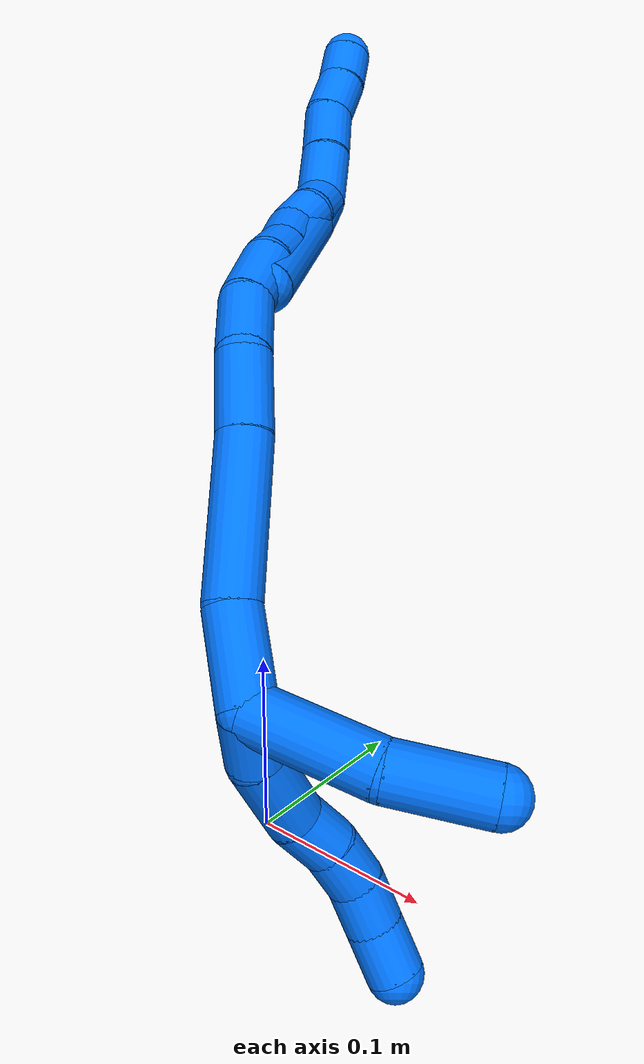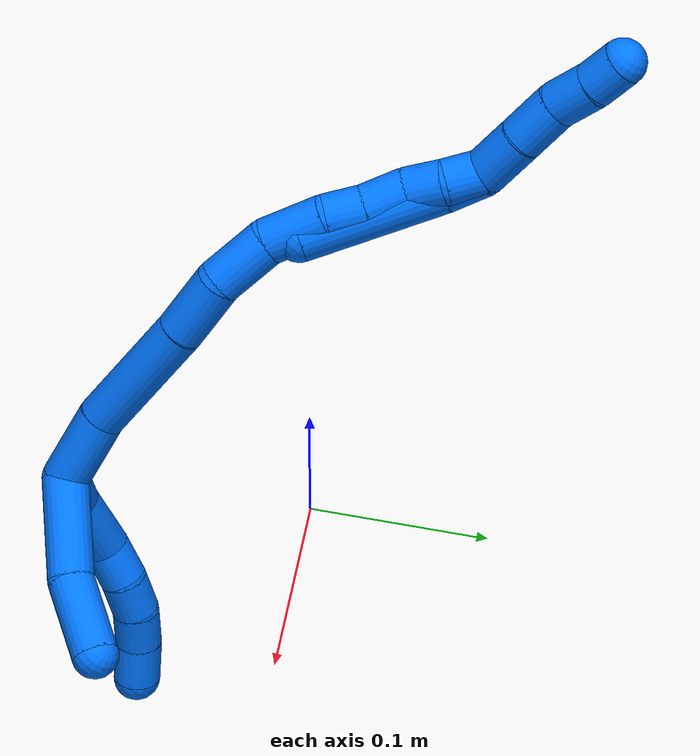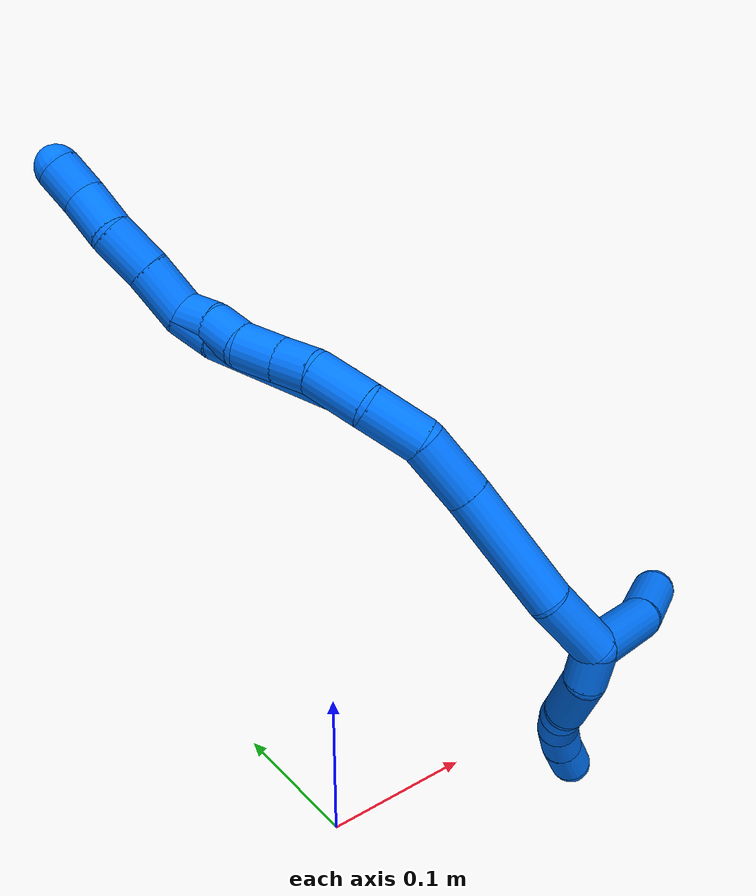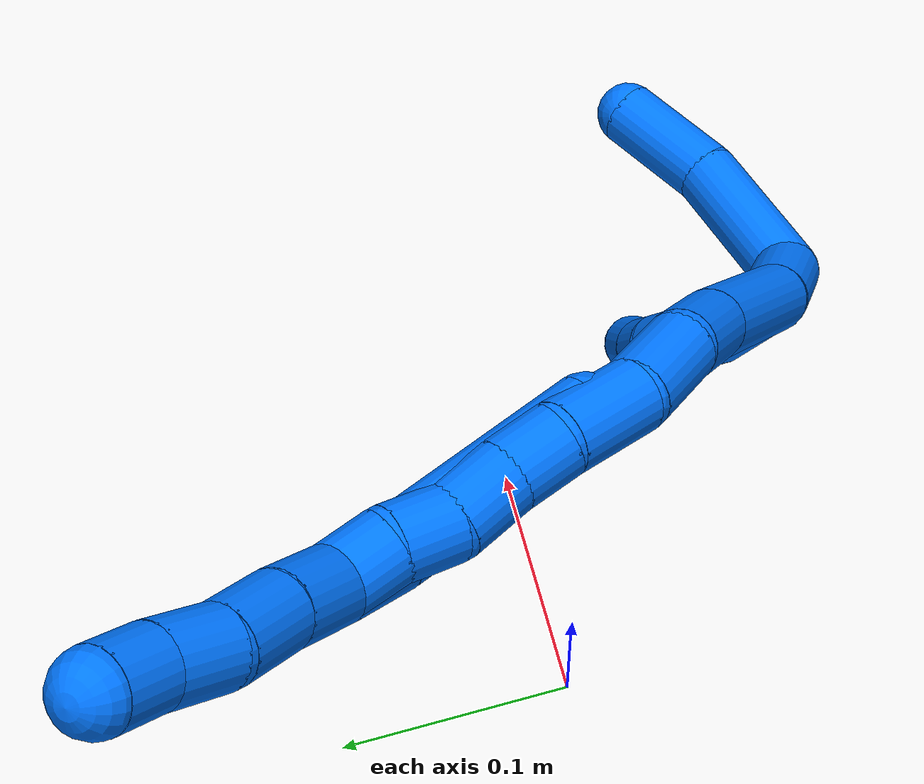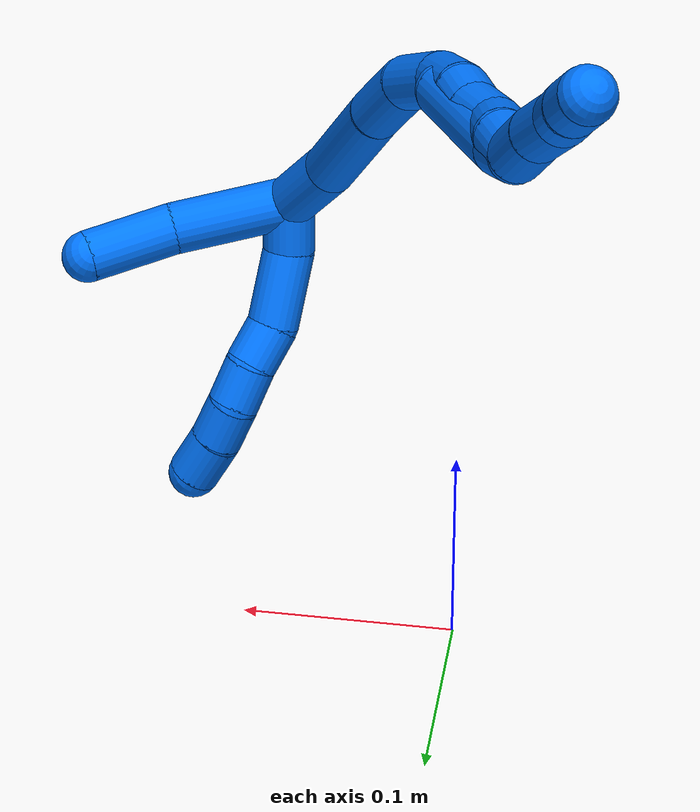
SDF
<sdf version="1.7">
 <world name="default">
  <model name="14">
   <static>0</static>
   <link name="14">
    <collision name="collision-cylinder-e_1_2_8">
     <pose>-0.004636 0.008045 -0.007771 -2.33888 -0.39296 0.877114</pose>
     <geometry><cylinder><radius>0.0125</radius><length>0.024216</length></cylinder></geometry>
     <surface>
      <friction><ode><mu>1.16</mu><mu2>1.16</mu2><slip1>0</slip1><slip2>0</slip2></ode></friction>
      <contact><ode><kp>1e+06</kp><kd>1</kd><max_vel>0</max_vel><min_depth>0.001</min_depth></ode></contact>
     </surface>
    </collision>
    <visual name="visual-cylinder-e_1_2_8">
     <pose>-0.004636 0.008045 -0.007771 -2.33888 -0.39296 0.877114</pose>
     <geometry><cylinder><radius>0.0125</radius><length>0.024216</length></cylinder></geometry>
     <material><ambient>0 0.462745 1 1</ambient></material>
    </visual>
    <collision name="collision-cylinder-e_2_8_9">
     <pose>-0.012248 0.032092 -0.02505 -2.1069 -0.158494 0.277319</pose>
     <geometry><cylinder><radius>0.0125</radius><length>0.0377</length></cylinder></geometry>
     <surface>
      <friction><ode><mu>1.16</mu><mu2>1.16</mu2><slip1>0</slip1><slip2>0</slip2></ode></friction>
      <contact><ode><kp>1e+06</kp><kd>1</kd><max_vel>0</max_vel><min_depth>0.001</min_depth></ode></contact>
     </surface>
    </collision>
    <visual name="visual-cylinder-e_2_8_9">
     <pose>-0.012248 0.032092 -0.02505 -2.1069 -0.158494 0.277319</pose>
     <geometry><cylinder><radius>0.0125</radius><length>0.0377</length></cylinder></geometry>
     <material><ambient>0 0.462745 1 1</ambient></material>
    </visual>
    <collision name="collision-cylinder-e_3_9_10">
     <pose>-0.013504 0.057516 -0.039604 -2.06258 0.159444 -0.265292</pose>
     <geometry><cylinder><radius>0.0125</radius><length>0.021651</length></cylinder></geometry>
     <surface>
      <friction><ode><mu>1.16</mu><mu2>1.16</mu2><slip1>0</slip1><slip2>0</slip2></ode></friction>
      <contact><ode><kp>1e+06</kp><kd>1</kd><max_vel>0</max_vel><min_depth>0.001</min_depth></ode></contact>
     </surface>
    </collision>
    <visual name="visual-cylinder-e_3_9_10">
     <pose>-0.013504 0.057516 -0.039604 -2.06258 0.159444 -0.265292</pose>
     <geometry><cylinder><radius>0.0125</radius><length>0.021651</length></cylinder></geometry>
     <material><ambient>0 0.462745 1 1</ambient></material>
    </visual>
    <collision name="collision-cylinder-e_4_10_11">
     <pose>-0.011498 0.075488 -0.051175 -2.22248 0.026738 -0.054018</pose>
     <geometry><cylinder><radius>0.0125</radius><length>0.021518</length></cylinder></geometry>
     <surface>
      <friction><ode><mu>1.16</mu><mu2>1.16</mu2><slip1>0</slip1><slip2>0</slip2></ode></friction>
      <contact><ode><kp>1e+06</kp><kd>1</kd><max_vel>0</max_vel><min_depth>0.001</min_depth></ode></contact>
     </surface>
    </collision>
    <visual name="visual-cylinder-e_4_10_11">
     <pose>-0.011498 0.075488 -0.051175 -2.22248 0.026738 -0.054018</pose>
     <geometry><cylinder><radius>0.0125</radius><length>0.021518</length></cylinder></geometry>
     <material><ambient>0 0.462745 1 1</ambient></material>
    </visual>
    <collision name="collision-cylinder-e_5_11_12">
     <pose>-0.011204 0.090755 -0.066095 -2.46697 0.000613 -0.001748</pose>
     <geometry><cylinder><radius>0.0125</radius><length>0.021504</length></cylinder></geometry>
     <surface>
      <friction><ode><mu>1.16</mu><mu2>1.16</mu2><slip1>0</slip1><slip2>0</slip2></ode></friction>
      <contact><ode><kp>1e+06</kp><kd>1</kd><max_vel>0</max_vel><min_depth>0.001</min_depth></ode></contact>
     </surface>
    </collision>
    <visual name="visual-cylinder-e_5_11_12">
     <pose>-0.011204 0.090755 -0.066095 -2.46697 0.000613 -0.001748</pose>
     <geometry><cylinder><radius>0.0125</radius><length>0.021504</length></cylinder></geometry>
     <material><ambient>0 0.462745 1 1</ambient></material>
    </visual>
    <collision name="collision-cylinder-e_6_12_6">
     <pose>-0.010123 0.103799 -0.08428 -2.56766 0.091896 -0.309128</pose>
     <geometry><cylinder><radius>0.0125</radius><length>0.023411</length></cylinder></geometry>
     <surface>
      <friction><ode><mu>1.16</mu><mu2>1.16</mu2><slip1>0</slip1><slip2>0</slip2></ode></friction>
      <contact><ode><kp>1e+06</kp><kd>1</kd><max_vel>0</max_vel><min_depth>0.001</min_depth></ode></contact>
     </surface>
    </collision>
    <visual name="visual-cylinder-e_6_12_6">
     <pose>-0.010123 0.103799 -0.08428 -2.56766 0.091896 -0.309128</pose>
     <geometry><cylinder><radius>0.0125</radius><length>0.023411</length></cylinder></geometry>
     <material><ambient>0 0.462745 1 1</ambient></material>
    </visual>
    <collision name="collision-cylinder-e_1_2_13">
     <pose>0.023302 0.011537 -0.011275 -2.34473 0.965277 -1.788</pose>
     <geometry><cylinder><radius>0.0125</radius><length>0.056682</length></cylinder></geometry>
     <surface>
      <friction><ode><mu>1.16</mu><mu2>1.16</mu2><slip1>0</slip1><slip2>0</slip2></ode></friction>
      <contact><ode><kp>1e+06</kp><kd>1</kd><max_vel>0</max_vel><min_depth>0.001</min_depth></ode></contact>
     </surface>
    </collision>
    <visual name="visual-cylinder-e_1_2_13">
     <pose>0.023302 0.011537 -0.011275 -2.34473 0.965277 -1.788</pose>
     <geometry><cylinder><radius>0.0125</radius><length>0.056682</length></cylinder></geometry>
     <material><ambient>0 0.462745 1 1</ambient></material>
    </visual>
    <collision name="collision-cylinder-e_2_13_5">
     <pose>0.06393 0.035255 -0.027083 -1.92699 0.927146 -1.24723</pose>
     <geometry><cylinder><radius>0.0125</radius><length>0.043318</length></cylinder></geometry>
     <surface>
      <friction><ode><mu>1.16</mu><mu2>1.16</mu2><slip1>0</slip1><slip2>0</slip2></ode></friction>
      <contact><ode><kp>1e+06</kp><kd>1</kd><max_vel>0</max_vel><min_depth>0.001</min_depth></ode></contact>
     </surface>
    </collision>
    <visual name="visual-cylinder-e_2_13_5">
     <pose>0.06393 0.035255 -0.027083 -1.92699 0.927146 -1.24723</pose>
     <geometry><cylinder><radius>0.0125</radius><length>0.043318</length></cylinder></geometry>
     <material><ambient>0 0.462745 1 1</ambient></material>
    </visual>
    <collision name="collision-cylinder-e_1_2_14">
     <pose>-0.002837 -0.00264 0.020388 0.128771 -0.137147 -0.008856</pose>
     <geometry><cylinder><radius>0.0125</radius><length>0.041506</length></cylinder></geometry>
     <surface>
      <friction><ode><mu>1.16</mu><mu2>1.16</mu2><slip1>0</slip1><slip2>0</slip2></ode></friction>
      <contact><ode><kp>1e+06</kp><kd>1</kd><max_vel>0</max_vel><min_depth>0.001</min_depth></ode></contact>
     </surface>
    </collision>
    <visual name="visual-cylinder-e_1_2_14">
     <pose>-0.002837 -0.00264 0.020388 0.128771 -0.137147 -0.008856</pose>
     <geometry><cylinder><radius>0.0125</radius><length>0.041506</length></cylinder></geometry>
     <material><ambient>0 0.462745 1 1</ambient></material>
    </visual>
    <collision name="collision-cylinder-e_2_14_15">
     <pose>-0.004283 -0.005281 0.076652 1.9e-05 0.038757 0</pose>
     <geometry><cylinder><radius>0.0125</radius><length>0.071805</length></cylinder></geometry>
     <surface>
      <friction><ode><mu>1.16</mu><mu2>1.16</mu2><slip1>0</slip1><slip2>0</slip2></ode></friction>
      <contact><ode><kp>1e+06</kp><kd>1</kd><max_vel>0</max_vel><min_depth>0.001</min_depth></ode></contact>
     </surface>
    </collision>
    <visual name="visual-cylinder-e_2_14_15">
     <pose>-0.004283 -0.005281 0.076652 1.9e-05 0.038757 0</pose>
     <geometry><cylinder><radius>0.0125</radius><length>0.071805</length></cylinder></geometry>
     <material><ambient>0 0.462745 1 1</ambient></material>
    </visual>
    <collision name="collision-cylinder-e_3_15_16">
     <pose>-0.003439 -0.006094 0.130773 0.044489 -0.02994 -0.000666</pose>
     <geometry><cylinder><radius>0.0125</radius><length>0.036543</length></cylinder></geometry>
     <surface>
      <friction><ode><mu>1.16</mu><mu2>1.16</mu2><slip1>0</slip1><slip2>0</slip2></ode></friction>
      <contact><ode><kp>1e+06</kp><kd>1</kd><max_vel>0</max_vel><min_depth>0.001</min_depth></ode></contact>
     </surface>
    </collision>
    <visual name="visual-cylinder-e_3_15_16">
     <pose>-0.003439 -0.006094 0.130773 0.044489 -0.02994 -0.000666</pose>
     <geometry><cylinder><radius>0.0125</radius><length>0.036543</length></cylinder></geometry>
     <material><ambient>0 0.462745 1 1</ambient></material>
    </visual>
    <collision name="collision-cylinder-e_4_16_17">
     <pose>-0.007504 -0.002989 0.1646 -0.246242 -0.215518 0.026772</pose>
     <geometry><cylinder><radius>0.0125</radius><length>0.032895</length></cylinder></geometry>
     <surface>
      <friction><ode><mu>1.16</mu><mu2>1.16</mu2><slip1>0</slip1><slip2>0</slip2></ode></friction>
      <contact><ode><kp>1e+06</kp><kd>1</kd><max_vel>0</max_vel><min_depth>0.001</min_depth></ode></contact>
     </surface>
    </collision>
    <visual name="visual-cylinder-e_4_16_17">
     <pose>-0.007504 -0.002989 0.1646 -0.246242 -0.215518 0.026772</pose>
     <geometry><cylinder><radius>0.0125</radius><length>0.032895</length></cylinder></geometry>
     <material><ambient>0 0.462745 1 1</ambient></material>
    </visual>
    <collision name="collision-cylinder-e_5_17_18">
     <pose>-0.01223 0.008917 0.194394 -0.512187 -0.074038 0.019395</pose>
     <geometry><cylinder><radius>0.0125</radius><length>0.032696</length></cylinder></geometry>
     <surface>
      <friction><ode><mu>1.16</mu><mu2>1.16</mu2><slip1>0</slip1><slip2>0</slip2></ode></friction>
      <contact><ode><kp>1e+06</kp><kd>1</kd><max_vel>0</max_vel><min_depth>0.001</min_depth></ode></contact>
     </surface>
    </collision>
    <visual name="visual-cylinder-e_5_17_18">
     <pose>-0.01223 0.008917 0.194394 -0.512187 -0.074038 0.019395</pose>
     <geometry><cylinder><radius>0.0125</radius><length>0.032696</length></cylinder></geometry>
     <material><ambient>0 0.462745 1 1</ambient></material>
    </visual>
    <collision name="collision-cylinder-e_6_18_19">
     <pose>-0.015195 0.023834 0.216051 -0.749301 -0.170897 0.067339</pose>
     <geometry><cylinder><radius>0.0125</radius><length>0.020642</length></cylinder></geometry>
     <surface>
      <friction><ode><mu>1.16</mu><mu2>1.16</mu2><slip1>0</slip1><slip2>0</slip2></ode></friction>
      <contact><ode><kp>1e+06</kp><kd>1</kd><max_vel>0</max_vel><min_depth>0.001</min_depth></ode></contact>
     </surface>
    </collision>
    <visual name="visual-cylinder-e_6_18_19">
     <pose>-0.015195 0.023834 0.216051 -0.749301 -0.170897 0.067339</pose>
     <geometry><cylinder><radius>0.0125</radius><length>0.020642</length></cylinder></geometry>
     <material><ambient>0 0.462745 1 1</ambient></material>
    </visual>
    <collision name="collision-cylinder-e_7_19_20">
     <pose>-0.01971 0.037291 0.232876 -0.608174 -0.23697 0.074681</pose>
     <geometry><cylinder><radius>0.0125</radius><length>0.023511</length></cylinder></geometry>
     <surface>
      <friction><ode><mu>1.16</mu><mu2>1.16</mu2><slip1>0</slip1><slip2>0</slip2></ode></friction>
      <contact><ode><kp>1e+06</kp><kd>1</kd><max_vel>0</max_vel><min_depth>0.001</min_depth></ode></contact>
     </surface>
    </collision>
    <visual name="visual-cylinder-e_7_19_20">
     <pose>-0.01971 0.037291 0.232876 -0.608174 -0.23697 0.074681</pose>
     <geometry><cylinder><radius>0.0125</radius><length>0.023511</length></cylinder></geometry>
     <material><ambient>0 0.462745 1 1</ambient></material>
    </visual>
    <collision name="collision-cylinder-e_8_20_21">
     <pose>-0.021844 0.049838 0.250461 -0.632662 0.06139 -0.0201</pose>
     <geometry><cylinder><radius>0.0125</radius><length>0.020392</length></cylinder></geometry>
     <surface>
      <friction><ode><mu>1.16</mu><mu2>1.16</mu2><slip1>0</slip1><slip2>0</slip2></ode></friction>
      <contact><ode><kp>1e+06</kp><kd>1</kd><max_vel>0</max_vel><min_depth>0.001</min_depth></ode></contact>
     </surface>
    </collision>
    <visual name="visual-cylinder-e_8_20_21">
     <pose>-0.021844 0.049838 0.250461 -0.632662 0.06139 -0.0201</pose>
     <geometry><cylinder><radius>0.0125</radius><length>0.020392</length></cylinder></geometry>
     <material><ambient>0 0.462745 1 1</ambient></material>
    </visual>
    <collision name="collision-cylinder-e_9_21_1">
     <pose>-0.02294 0.062362 0.26607 -0.721189 -0.172993 0.065372</pose>
     <geometry><cylinder><radius>0.0125</radius><length>0.020009</length></cylinder></geometry>
     <surface>
      <friction><ode><mu>1.16</mu><mu2>1.16</mu2><slip1>0</slip1><slip2>0</slip2></ode></friction>
      <contact><ode><kp>1e+06</kp><kd>1</kd><max_vel>0</max_vel><min_depth>0.001</min_depth></ode></contact>
     </surface>
    </collision>
    <visual name="visual-cylinder-e_9_21_1">
     <pose>-0.02294 0.062362 0.26607 -0.721189 -0.172993 0.065372</pose>
     <geometry><cylinder><radius>0.0125</radius><length>0.020009</length></cylinder></geometry>
     <material><ambient>0 0.462745 1 1</ambient></material>
    </visual>
    <collision name="collision-cylinder-e_1_1_22">
     <pose>-0.024099 0.063632 0.263553 2.65573 0.050208 0.201945</pose>
     <geometry><cylinder><radius>0.0125</radius><length>0.022461</length></cylinder></geometry>
     <surface>
      <friction><ode><mu>1.16</mu><mu2>1.16</mu2><slip1>0</slip1><slip2>0</slip2></ode></friction>
      <contact><ode><kp>1e+06</kp><kd>1</kd><max_vel>0</max_vel><min_depth>0.001</min_depth></ode></contact>
     </surface>
    </collision>
    <visual name="visual-cylinder-e_1_1_22">
     <pose>-0.024099 0.063632 0.263553 2.65573 0.050208 0.201945</pose>
     <geometry><cylinder><radius>0.0125</radius><length>0.022461</length></cylinder></geometry>
     <material><ambient>0 0.462745 1 1</ambient></material>
    </visual>
    <collision name="collision-cylinder-e_2_22_4">
     <pose>-0.016611 0.035409 0.223192 2.49488 0.179559 0.524863</pose>
     <geometry><cylinder><radius>0.0125</radius><length>0.077539</length></cylinder></geometry>
     <surface>
      <friction><ode><mu>1.16</mu><mu2>1.16</mu2><slip1>0</slip1><slip2>0</slip2></ode></friction>
      <contact><ode><kp>1e+06</kp><kd>1</kd><max_vel>0</max_vel><min_depth>0.001</min_depth></ode></contact>
     </surface>
    </collision>
    <visual name="visual-cylinder-e_2_22_4">
     <pose>-0.016611 0.035409 0.223192 2.49488 0.179559 0.524863</pose>
     <geometry><cylinder><radius>0.0125</radius><length>0.077539</length></cylinder></geometry>
     <material><ambient>0 0.462745 1 1</ambient></material>
    </visual>
    <collision name="collision-cylinder-e_1_1_23">
     <pose>-0.023891 0.069828 0.287981 -0.065974 0.053029 -0.00175</pose>
     <geometry><cylinder><radius>0.0125</radius><length>0.029123</length></cylinder></geometry>
     <surface>
      <friction><ode><mu>1.16</mu><mu2>1.16</mu2><slip1>0</slip1><slip2>0</slip2></ode></friction>
      <contact><ode><kp>1e+06</kp><kd>1</kd><max_vel>0</max_vel><min_depth>0.001</min_depth></ode></contact>
     </surface>
    </collision>
    <visual name="visual-cylinder-e_1_1_23">
     <pose>-0.023891 0.069828 0.287981 -0.065974 0.053029 -0.00175</pose>
     <geometry><cylinder><radius>0.0125</radius><length>0.029123</length></cylinder></geometry>
     <material><ambient>0 0.462745 1 1</ambient></material>
    </visual>
    <collision name="collision-cylinder-e_2_23_24">
     <pose>-0.02348 0.07209 0.315897 -0.096897 -0.026804 0.0013</pose>
     <geometry><cylinder><radius>0.0125</radius><length>0.026949</length></cylinder></geometry>
     <surface>
      <friction><ode><mu>1.16</mu><mu2>1.16</mu2><slip1>0</slip1><slip2>0</slip2></ode></friction>
      <contact><ode><kp>1e+06</kp><kd>1</kd><max_vel>0</max_vel><min_depth>0.001</min_depth></ode></contact>
     </surface>
    </collision>
    <visual name="visual-cylinder-e_2_23_24">
     <pose>-0.02348 0.07209 0.315897 -0.096897 -0.026804 0.0013</pose>
     <geometry><cylinder><radius>0.0125</radius><length>0.026949</length></cylinder></geometry>
     <material><ambient>0 0.462745 1 1</ambient></material>
    </visual>
    <collision name="collision-cylinder-e_3_24_25">
     <pose>-0.02198 0.076278 0.340557 -0.250961 0.158809 -0.020074</pose>
     <geometry><cylinder><radius>0.0125</radius><length>0.023532</length></cylinder></geometry>
     <surface>
      <friction><ode><mu>1.16</mu><mu2>1.16</mu2><slip1>0</slip1><slip2>0</slip2></ode></friction>
      <contact><ode><kp>1e+06</kp><kd>1</kd><max_vel>0</max_vel><min_depth>0.001</min_depth></ode></contact>
     </surface>
    </collision>
    <visual name="visual-cylinder-e_3_24_25">
     <pose>-0.02198 0.076278 0.340557 -0.250961 0.158809 -0.020074</pose>
     <geometry><cylinder><radius>0.0125</radius><length>0.023532</length></cylinder></geometry>
     <material><ambient>0 0.462745 1 1</ambient></material>
    </visual>
    <collision name="collision-cylinder-e_4_25_3">
     <pose>-0.019479 0.080706 0.361872 -0.152173 0.062894 -0.004796</pose>
     <geometry><cylinder><radius>0.0125</radius><length>0.020396</length></cylinder></geometry>
     <surface>
      <friction><ode><mu>1.16</mu><mu2>1.16</mu2><slip1>0</slip1><slip2>0</slip2></ode></friction>
      <contact><ode><kp>1e+06</kp><kd>1</kd><max_vel>0</max_vel><min_depth>0.001</min_depth></ode></contact>
     </surface>
    </collision>
    <visual name="visual-cylinder-e_4_25_3">
     <pose>-0.019479 0.080706 0.361872 -0.152173 0.062894 -0.004796</pose>
     <geometry><cylinder><radius>0.0125</radius><length>0.020396</length></cylinder></geometry>
     <material><ambient>0 0.462745 1 1</ambient></material>
    </visual>
    <collision name="collision-sphere-3">
     <pose>-0.018838 0.082249 0.371932 0 -0 0</pose>
     <geometry><sphere><radius>0.0125</radius></sphere></geometry>
     <surface>
      <friction><ode><mu>1.16</mu><mu2>1.16</mu2><slip1>0</slip1><slip2>0</slip2></ode></friction>
      <contact><ode><kp>1e+06</kp><kd>1</kd><max_vel>0</max_vel><min_depth>0.001</min_depth></ode></contact>
     </surface>
    </collision>
    <visual name="visual-sphere-3">
     <pose>-0.018838 0.082249 0.371932 0 -0 0</pose>
     <geometry><sphere><radius>0.0125</radius></sphere></geometry>
     <material><ambient>0 0.462745 1 1</ambient></material>
    </visual>
    <collision name="collision-sphere-25">
     <pose>-0.02012 0.079163 0.351811 0 -0 0</pose>
     <geometry><sphere><radius>0.0125</radius></sphere></geometry>
     <surface>
      <friction><ode><mu>1.16</mu><mu2>1.16</mu2><slip1>0</slip1><slip2>0</slip2></ode></friction>
      <contact><ode><kp>1e+06</kp><kd>1</kd><max_vel>0</max_vel><min_depth>0.001</min_depth></ode></contact>
     </surface>
    </collision>
    <visual name="visual-sphere-25">
     <pose>-0.02012 0.079163 0.351811 0 -0 0</pose>
     <geometry><sphere><radius>0.0125</radius></sphere></geometry>
     <material><ambient>0 0.462745 1 1</ambient></material>
    </visual>
    <collision name="collision-sphere-24">
     <pose>-0.023841 0.073393 0.329304 0 -0 0</pose>
     <geometry><sphere><radius>0.0125</radius></sphere></geometry>
     <surface>
      <friction><ode><mu>1.16</mu><mu2>1.16</mu2><slip1>0</slip1><slip2>0</slip2></ode></friction>
      <contact><ode><kp>1e+06</kp><kd>1</kd><max_vel>0</max_vel><min_depth>0.001</min_depth></ode></contact>
     </surface>
    </collision>
    <visual name="visual-sphere-24">
     <pose>-0.023841 0.073393 0.329304 0 -0 0</pose>
     <geometry><sphere><radius>0.0125</radius></sphere></geometry>
     <material><ambient>0 0.462745 1 1</ambient></material>
    </visual>
    <collision name="collision-sphere-23">
     <pose>-0.023119 0.070787 0.302491 0 -0 0</pose>
     <geometry><sphere><radius>0.0125</radius></sphere></geometry>
     <surface>
      <friction><ode><mu>1.16</mu><mu2>1.16</mu2><slip1>0</slip1><slip2>0</slip2></ode></friction>
      <contact><ode><kp>1e+06</kp><kd>1</kd><max_vel>0</max_vel><min_depth>0.001</min_depth></ode></contact>
     </surface>
    </collision>
    <visual name="visual-sphere-23">
     <pose>-0.023119 0.070787 0.302491 0 -0 0</pose>
     <geometry><sphere><radius>0.0125</radius></sphere></geometry>
     <material><ambient>0 0.462745 1 1</ambient></material>
    </visual>
    <collision name="collision-sphere-4">
     <pose>-0.009687 0.012423 0.192748 0 -0 0</pose>
     <geometry><sphere><radius>0.0125</radius></sphere></geometry>
     <surface>
      <friction><ode><mu>1.16</mu><mu2>1.16</mu2><slip1>0</slip1><slip2>0</slip2></ode></friction>
      <contact><ode><kp>1e+06</kp><kd>1</kd><max_vel>0</max_vel><min_depth>0.001</min_depth></ode></contact>
     </surface>
    </collision>
    <visual name="visual-sphere-4">
     <pose>-0.009687 0.012423 0.192748 0 -0 0</pose>
     <geometry><sphere><radius>0.0125</radius></sphere></geometry>
     <material><ambient>0 0.462745 1 1</ambient></material>
    </visual>
    <collision name="collision-sphere-22">
     <pose>-0.023535 0.058394 0.253635 0 -0 0</pose>
     <geometry><sphere><radius>0.0125</radius></sphere></geometry>
     <surface>
      <friction><ode><mu>1.16</mu><mu2>1.16</mu2><slip1>0</slip1><slip2>0</slip2></ode></friction>
      <contact><ode><kp>1e+06</kp><kd>1</kd><max_vel>0</max_vel><min_depth>0.001</min_depth></ode></contact>
     </surface>
    </collision>
    <visual name="visual-sphere-22">
     <pose>-0.023535 0.058394 0.253635 0 -0 0</pose>
     <geometry><sphere><radius>0.0125</radius></sphere></geometry>
     <material><ambient>0 0.462745 1 1</ambient></material>
    </visual>
    <collision name="collision-sphere-1">
     <pose>-0.024663 0.06887 0.273472 0 -0 0</pose>
     <geometry><sphere><radius>0.0125</radius></sphere></geometry>
     <surface>
      <friction><ode><mu>1.16</mu><mu2>1.16</mu2><slip1>0</slip1><slip2>0</slip2></ode></friction>
      <contact><ode><kp>1e+06</kp><kd>1</kd><max_vel>0</max_vel><min_depth>0.001</min_depth></ode></contact>
     </surface>
    </collision>
    <visual name="visual-sphere-1">
     <pose>-0.024663 0.06887 0.273472 0 -0 0</pose>
     <geometry><sphere><radius>0.0125</radius></sphere></geometry>
     <material><ambient>0 0.462745 1 1</ambient></material>
    </visual>
    <collision name="collision-sphere-21">
     <pose>-0.021218 0.055855 0.258669 0 -0 0</pose>
     <geometry><sphere><radius>0.0125</radius></sphere></geometry>
     <surface>
      <friction><ode><mu>1.16</mu><mu2>1.16</mu2><slip1>0</slip1><slip2>0</slip2></ode></friction>
      <contact><ode><kp>1e+06</kp><kd>1</kd><max_vel>0</max_vel><min_depth>0.001</min_depth></ode></contact>
     </surface>
    </collision>
    <visual name="visual-sphere-21">
     <pose>-0.021218 0.055855 0.258669 0 -0 0</pose>
     <geometry><sphere><radius>0.0125</radius></sphere></geometry>
     <material><ambient>0 0.462745 1 1</ambient></material>
    </visual>
    <collision name="collision-sphere-12">
     <pose>-0.011197 0.097471 -0.074491 0 -0 0</pose>
     <geometry><sphere><radius>0.0125</radius></sphere></geometry>
     <surface>
      <friction><ode><mu>1.16</mu><mu2>1.16</mu2><slip1>0</slip1><slip2>0</slip2></ode></friction>
      <contact><ode><kp>1e+06</kp><kd>1</kd><max_vel>0</max_vel><min_depth>0.001</min_depth></ode></contact>
     </surface>
    </collision>
    <visual name="visual-sphere-12">
     <pose>-0.011197 0.097471 -0.074491 0 -0 0</pose>
     <geometry><sphere><radius>0.0125</radius></sphere></geometry>
     <material><ambient>0 0.462745 1 1</ambient></material>
    </visual>
    <collision name="collision-sphere-11">
     <pose>-0.01121 0.08404 -0.057698 0 -0 0</pose>
     <geometry><sphere><radius>0.0125</radius></sphere></geometry>
     <surface>
      <friction><ode><mu>1.16</mu><mu2>1.16</mu2><slip1>0</slip1><slip2>0</slip2></ode></friction>
      <contact><ode><kp>1e+06</kp><kd>1</kd><max_vel>0</max_vel><min_depth>0.001</min_depth></ode></contact>
     </surface>
    </collision>
    <visual name="visual-sphere-11">
     <pose>-0.01121 0.08404 -0.057698 0 -0 0</pose>
     <geometry><sphere><radius>0.0125</radius></sphere></geometry>
     <material><ambient>0 0.462745 1 1</ambient></material>
    </visual>
    <collision name="collision-sphere-10">
     <pose>-0.011786 0.066937 -0.044651 0 -0 0</pose>
     <geometry><sphere><radius>0.0125</radius></sphere></geometry>
     <surface>
      <friction><ode><mu>1.16</mu><mu2>1.16</mu2><slip1>0</slip1><slip2>0</slip2></ode></friction>
      <contact><ode><kp>1e+06</kp><kd>1</kd><max_vel>0</max_vel><min_depth>0.001</min_depth></ode></contact>
     </surface>
    </collision>
    <visual name="visual-sphere-10">
     <pose>-0.011786 0.066937 -0.044651 0 -0 0</pose>
     <geometry><sphere><radius>0.0125</radius></sphere></geometry>
     <material><ambient>0 0.462745 1 1</ambient></material>
    </visual>
    <collision name="collision-sphere-9">
     <pose>-0.015223 0.048094 -0.034557 0 -0 0</pose>
     <geometry><sphere><radius>0.0125</radius></sphere></geometry>
     <surface>
      <friction><ode><mu>1.16</mu><mu2>1.16</mu2><slip1>0</slip1><slip2>0</slip2></ode></friction>
      <contact><ode><kp>1e+06</kp><kd>1</kd><max_vel>0</max_vel><min_depth>0.001</min_depth></ode></contact>
     </surface>
    </collision>
    <visual name="visual-sphere-9">
     <pose>-0.015223 0.048094 -0.034557 0 -0 0</pose>
     <geometry><sphere><radius>0.0125</radius></sphere></geometry>
     <material><ambient>0 0.462745 1 1</ambient></material>
    </visual>
    <collision name="collision-sphere-2">
     <geometry><sphere><radius>0.0125</radius></sphere></geometry>
     <surface>
      <friction><ode><mu>1.16</mu><mu2>1.16</mu2><slip1>0</slip1><slip2>0</slip2></ode></friction>
      <contact><ode><kp>1e+06</kp><kd>1</kd><max_vel>0</max_vel><min_depth>0.001</min_depth></ode></contact>
     </surface>
    </collision>
    <visual name="visual-sphere-2">
     <geometry><sphere><radius>0.0125</radius></sphere></geometry>
     <material><ambient>0 0.462745 1 1</ambient></material>
    </visual>
    <collision name="collision-sphere-19">
     <pose>-0.01695 0.030762 0.223498 0 -0 0</pose>
     <geometry><sphere><radius>0.0125</radius></sphere></geometry>
     <surface>
      <friction><ode><mu>1.16</mu><mu2>1.16</mu2><slip1>0</slip1><slip2>0</slip2></ode></friction>
      <contact><ode><kp>1e+06</kp><kd>1</kd><max_vel>0</max_vel><min_depth>0.001</min_depth></ode></contact>
     </surface>
    </collision>
    <visual name="visual-sphere-19">
     <pose>-0.01695 0.030762 0.223498 0 -0 0</pose>
     <geometry><sphere><radius>0.0125</radius></sphere></geometry>
     <material><ambient>0 0.462745 1 1</ambient></material>
    </visual>
    <collision name="collision-sphere-8">
     <pose>-0.009273 0.01609 -0.015542 0 -0 0</pose>
     <geometry><sphere><radius>0.0125</radius></sphere></geometry>
     <surface>
      <friction><ode><mu>1.16</mu><mu2>1.16</mu2><slip1>0</slip1><slip2>0</slip2></ode></friction>
      <contact><ode><kp>1e+06</kp><kd>1</kd><max_vel>0</max_vel><min_depth>0.001</min_depth></ode></contact>
     </surface>
    </collision>
    <visual name="visual-sphere-8">
     <pose>-0.009273 0.01609 -0.015542 0 -0 0</pose>
     <geometry><sphere><radius>0.0125</radius></sphere></geometry>
     <material><ambient>0 0.462745 1 1</ambient></material>
    </visual>
    <collision name="collision-sphere-6">
     <pose>-0.009049 0.110128 -0.094068 0 -0 0</pose>
     <geometry><sphere><radius>0.0125</radius></sphere></geometry>
     <surface>
      <friction><ode><mu>1.16</mu><mu2>1.16</mu2><slip1>0</slip1><slip2>0</slip2></ode></friction>
      <contact><ode><kp>1e+06</kp><kd>1</kd><max_vel>0</max_vel><min_depth>0.001</min_depth></ode></contact>
     </surface>
    </collision>
    <visual name="visual-sphere-6">
     <pose>-0.009049 0.110128 -0.094068 0 -0 0</pose>
     <geometry><sphere><radius>0.0125</radius></sphere></geometry>
     <material><ambient>0 0.462745 1 1</ambient></material>
    </visual>
    <collision name="collision-sphere-13">
     <pose>0.046604 0.023073 -0.02255 0 -0 0</pose>
     <geometry><sphere><radius>0.0125</radius></sphere></geometry>
     <surface>
      <friction><ode><mu>1.16</mu><mu2>1.16</mu2><slip1>0</slip1><slip2>0</slip2></ode></friction>
      <contact><ode><kp>1e+06</kp><kd>1</kd><max_vel>0</max_vel><min_depth>0.001</min_depth></ode></contact>
     </surface>
    </collision>
    <visual name="visual-sphere-13">
     <pose>0.046604 0.023073 -0.02255 0 -0 0</pose>
     <geometry><sphere><radius>0.0125</radius></sphere></geometry>
     <material><ambient>0 0.462745 1 1</ambient></material>
    </visual>
    <collision name="collision-sphere-5">
     <pose>0.081255 0.047437 -0.031615 0 -0 0</pose>
     <geometry><sphere><radius>0.0125</radius></sphere></geometry>
     <surface>
      <friction><ode><mu>1.16</mu><mu2>1.16</mu2><slip1>0</slip1><slip2>0</slip2></ode></friction>
      <contact><ode><kp>1e+06</kp><kd>1</kd><max_vel>0</max_vel><min_depth>0.001</min_depth></ode></contact>
     </surface>
    </collision>
    <visual name="visual-sphere-5">
     <pose>0.081255 0.047437 -0.031615 0 -0 0</pose>
     <geometry><sphere><radius>0.0125</radius></sphere></geometry>
     <material><ambient>0 0.462745 1 1</ambient></material>
    </visual>
    <collision name="collision-sphere-14">
     <pose>-0.005675 -0.00528 0.040776 0 -0 0</pose>
     <geometry><sphere><radius>0.0125</radius></sphere></geometry>
     <surface>
      <friction><ode><mu>1.16</mu><mu2>1.16</mu2><slip1>0</slip1><slip2>0</slip2></ode></friction>
      <contact><ode><kp>1e+06</kp><kd>1</kd><max_vel>0</max_vel><min_depth>0.001</min_depth></ode></contact>
     </surface>
    </collision>
    <visual name="visual-sphere-14">
     <pose>-0.005675 -0.00528 0.040776 0 -0 0</pose>
     <geometry><sphere><radius>0.0125</radius></sphere></geometry>
     <material><ambient>0 0.462745 1 1</ambient></material>
    </visual>
    <collision name="collision-sphere-15">
     <pose>-0.002892 -0.005281 0.112527 0 -0 0</pose>
     <geometry><sphere><radius>0.0125</radius></sphere></geometry>
     <surface>
      <friction><ode><mu>1.16</mu><mu2>1.16</mu2><slip1>0</slip1><slip2>0</slip2></ode></friction>
      <contact><ode><kp>1e+06</kp><kd>1</kd><max_vel>0</max_vel><min_depth>0.001</min_depth></ode></contact>
     </surface>
    </collision>
    <visual name="visual-sphere-15">
     <pose>-0.002892 -0.005281 0.112527 0 -0 0</pose>
     <geometry><sphere><radius>0.0125</radius></sphere></geometry>
     <material><ambient>0 0.462745 1 1</ambient></material>
    </visual>
    <collision name="collision-sphere-16">
     <pose>-0.003986 -0.006906 0.149018 0 -0 0</pose>
     <geometry><sphere><radius>0.0125</radius></sphere></geometry>
     <surface>
      <friction><ode><mu>1.16</mu><mu2>1.16</mu2><slip1>0</slip1><slip2>0</slip2></ode></friction>
      <contact><ode><kp>1e+06</kp><kd>1</kd><max_vel>0</max_vel><min_depth>0.001</min_depth></ode></contact>
     </surface>
    </collision>
    <visual name="visual-sphere-16">
     <pose>-0.003986 -0.006906 0.149018 0 -0 0</pose>
     <geometry><sphere><radius>0.0125</radius></sphere></geometry>
     <material><ambient>0 0.462745 1 1</ambient></material>
    </visual>
    <collision name="collision-sphere-17">
     <pose>-0.011021 0.000927 0.180183 0 -0 0</pose>
     <geometry><sphere><radius>0.0125</radius></sphere></geometry>
     <surface>
      <friction><ode><mu>1.16</mu><mu2>1.16</mu2><slip1>0</slip1><slip2>0</slip2></ode></friction>
      <contact><ode><kp>1e+06</kp><kd>1</kd><max_vel>0</max_vel><min_depth>0.001</min_depth></ode></contact>
     </surface>
    </collision>
    <visual name="visual-sphere-17">
     <pose>-0.011021 0.000927 0.180183 0 -0 0</pose>
     <geometry><sphere><radius>0.0125</radius></sphere></geometry>
     <material><ambient>0 0.462745 1 1</ambient></material>
    </visual>
    <collision name="collision-sphere-18">
     <pose>-0.01344 0.016907 0.208605 0 -0 0</pose>
     <geometry><sphere><radius>0.0125</radius></sphere></geometry>
     <surface>
      <friction><ode><mu>1.16</mu><mu2>1.16</mu2><slip1>0</slip1><slip2>0</slip2></ode></friction>
      <contact><ode><kp>1e+06</kp><kd>1</kd><max_vel>0</max_vel><min_depth>0.001</min_depth></ode></contact>
     </surface>
    </collision>
    <visual name="visual-sphere-18">
     <pose>-0.01344 0.016907 0.208605 0 -0 0</pose>
     <geometry><sphere><radius>0.0125</radius></sphere></geometry>
     <material><ambient>0 0.462745 1 1</ambient></material>
    </visual>
    <collision name="collision-sphere-20">
     <pose>-0.022469 0.04382 0.242254 0 -0 0</pose>
     <geometry><sphere><radius>0.0125</radius></sphere></geometry>
     <surface>
      <friction><ode><mu>1.16</mu><mu2>1.16</mu2><slip1>0</slip1><slip2>0</slip2></ode></friction>
      <contact><ode><kp>1e+06</kp><kd>1</kd><max_vel>0</max_vel><min_depth>0.001</min_depth></ode></contact>
     </surface>
    </collision>
    <visual name="visual-sphere-20">
     <pose>-0.022469 0.04382 0.242254 0 -0 0</pose>
     <geometry><sphere><radius>0.0125</radius></sphere></geometry>
     <material><ambient>0 0.462745 1 1</ambient></material>
    </visual>
    <inertial>
     <pose>-0.005938 0.034059 0.120651 0 -0 0</pose>
     <mass>0.75</mass>
     <inertia>
      <ixx>0.000136</ixx>
      <ixy>0</ixy>
      <ixz>0</ixz>
      <iyy>7.4e-05</iyy>
      <iyz>0</iyz>
      <izz>-1.8e-05</izz>
     </inertia>
    </inertial>
   </link>
   <pose>0.095826 -0.111571 0.160844 -0.610958 -0.402728 0.155711</pose>
  </model>
 </world>
</sdf>
